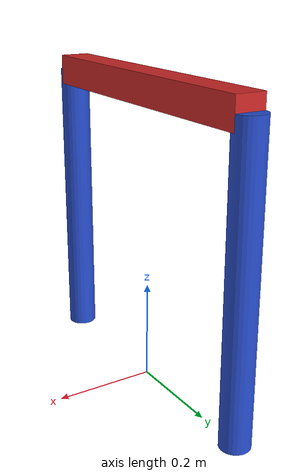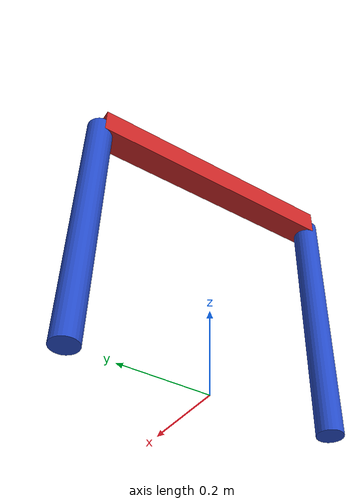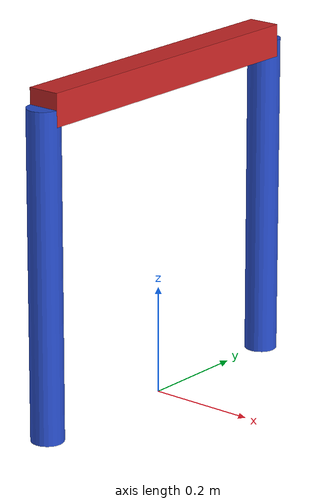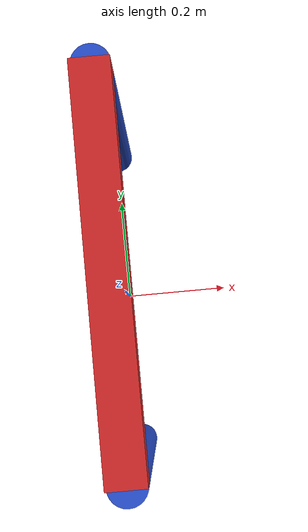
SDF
<sdf version='1.6'>
<model name='limbo_bar'>
  <static>false</static>
  <pose frame=''>0 0 0 0 -0 0</pose>
  <link name='link'>
    <pose frame=''>0 0 .3 0 -0 0</pose>
    <inertial>
      <mass>1</mass>
      <inertia>
        <ixx>0.145833</ixx>
        <ixy>0</ixy>
        <ixz>0</ixz>
        <iyy>0.145833</iyy>
        <iyz>0</iyz>
        <izz>0.125</izz>
      </inertia>
    </inertial>
    <collision name='vl_collision'>
      <pose frame=''>0 .3 0 0 -0 0</pose>
      <geometry>
        <cylinder>
          <radius>0.03</radius>
          <length>.6</length>
        </cylinder>
      </geometry>
      <max_contacts>10</max_contacts>
    </collision>
    <visual name='vl_visual'>
      <pose frame=''>0 .3 0 0 -0 0</pose>
      <geometry>
        <cylinder>
          <radius>0.03</radius>
          <length>.6</length>
        </cylinder>
      </geometry>
      <material>
        <script>
          <name>Gazebo/Blue</name>
          <uri>file://media/materials/scripts/gazebo.material</uri>
        </script>
      </material>
    </visual>

    <collision name='vr_collision'>
      <pose frame=''>0 -.3 0 0 -0 0</pose>
      <geometry>
        <cylinder>
          <radius>0.03</radius>
          <length>.6</length>
        </cylinder>
      </geometry>
      <max_contacts>10</max_contacts>
    </collision>
    <visual name='vr_visual'>
      <pose frame=''>0 -.3 0 0 -0 0</pose>
      <geometry>
        <cylinder>
          <radius>0.03</radius>
          <length>.6</length>
        </cylinder>
      </geometry>
      <material>
        <script>
          <name>Gazebo/Blue</name>
          <uri>file://media/materials/scripts/gazebo.material</uri>
        </script>
      </material>
    </visual>

    <collision name='h_collision'>
      <pose frame=''>0 0 .3 0 -0 0</pose>
      <geometry>
        <box>
          <size>.06 .6 .06</size>
        </box>
      </geometry>
      <max_contacts>10</max_contacts>
    </collision>
    <visual name='h_visual'>
      <pose frame=''>0 0 .3 0 -0 0</pose>
      <geometry>
        <box>
          <size>.06 .6 .06</size>
        </box>
      </geometry>
      <material>
        <script>
          <name>Gazebo/Red</name>
          <uri>file://media/materials/scripts/gazebo.material</uri>
        </script>
      </material>
    </visual>

    <self_collide>0</self_collide>
    <kinematic>0</kinematic>
  </link>

</model>
</sdf>

<!-- Spawn with the following command: rosrun gazebo_ros spawn_model -sdf -file /home/justin/catkin_ws/src/navigation_test/configs/models/pole_005_06.srdf -model pole -x 1
 -->
